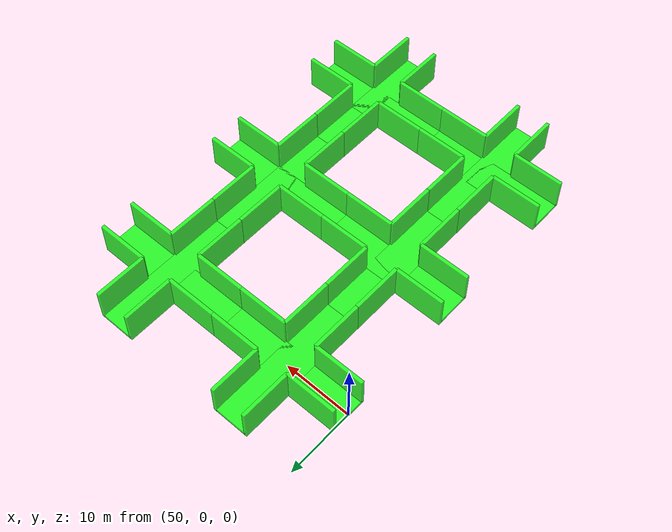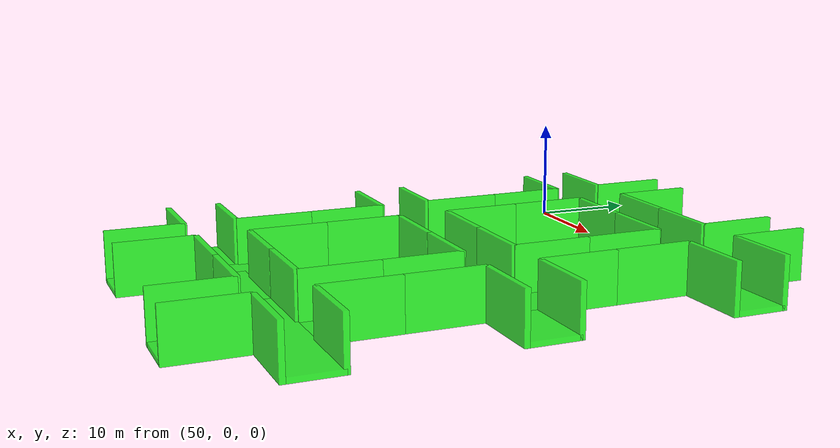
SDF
<sdf version="1.6">
 <world name="levels">
  <model name="tile_11">
   <pose>60 -40 0 0 0 -1.5707963267948966</pose>
   <static>true</static>
   <link name="link">
    <collision name="collision_0">
     <pose>0 0 -0.25 0 0 0</pose>
     <geometry><box><size>5 20 0.5</size></box></geometry>
    </collision>
    <visual name="visual_0">
     <pose>0 0 -0.25 0 0 0</pose>
     <geometry><box><size>5 20 0.5</size></box></geometry>
     <material><ambient>0 1 0 0.8</ambient><diffuse>0 1 0 0.8</diffuse><specular>1 1 1 0.8</specular></material>
    </visual>
    <collision name="collision_1">
     <pose>0 0 -0.25 0 0 1.57</pose>
     <geometry><box><size>5 20 0.5</size></box></geometry>
    </collision>
    <visual name="visual_1">
     <pose>0 0 -0.25 0 0 1.57</pose>
     <geometry><box><size>5 20 0.5</size></box></geometry>
     <material><ambient>0 1 0 0.8</ambient><diffuse>0 1 0 0.8</diffuse><specular>1 1 1 0.8</specular></material>
    </visual>
    <collision name="collision_2">
     <pose>-2.5 6.25 2 3.14 -1.57 0</pose>
     <geometry><box><size>5 7.5 0.5</size></box></geometry>
    </collision>
    <visual name="visual_2">
     <pose>-2.5 6.25 2 3.14 -1.57 0</pose>
     <geometry><box><size>5 7.5 0.5</size></box></geometry>
     <material><ambient>0 1 0 0.8</ambient><diffuse>0 1 0 0.8</diffuse><specular>1 1 1 0.8</specular></material>
    </visual>
    <collision name="collision_3">
     <pose>2.5 6.25 2 3.14 -1.57 0</pose>
     <geometry><box><size>5 7.5 0.5</size></box></geometry>
    </collision>
    <visual name="visual_3">
     <pose>2.5 6.25 2 3.14 -1.57 0</pose>
     <geometry><box><size>5 7.5 0.5</size></box></geometry>
     <material><ambient>0 1 0 0.8</ambient><diffuse>0 1 0 0.8</diffuse><specular>1 1 1 0.8</specular></material>
    </visual>
    <collision name="collision_4">
     <pose>-2.5 -6.25 2 3.14 -1.57 0</pose>
     <geometry><box><size>5 7.5 0.5</size></box></geometry>
    </collision>
    <visual name="visual_4">
     <pose>-2.5 -6.25 2 3.14 -1.57 0</pose>
     <geometry><box><size>5 7.5 0.5</size></box></geometry>
     <material><ambient>0 1 0 0.8</ambient><diffuse>0 1 0 0.8</diffuse><specular>1 1 1 0.8</specular></material>
    </visual>
    <collision name="collision_5">
     <pose>2.5 -6.25 2 3.14 -1.57 0</pose>
     <geometry><box><size>5 7.5 0.5</size></box></geometry>
    </collision>
    <visual name="visual_5">
     <pose>2.5 -6.25 2 3.14 -1.57 0</pose>
     <geometry><box><size>5 7.5 0.5</size></box></geometry>
     <material><ambient>0 1 0 0.8</ambient><diffuse>0 1 0 0.8</diffuse><specular>1 1 1 0.8</specular></material>
    </visual>
    <collision name="collision_6">
     <pose>6.25 2.5 2 1.57 1.57 0</pose>
     <geometry><box><size>5 7.5 0.5</size></box></geometry>
    </collision>
    <visual name="visual_6">
     <pose>6.25 2.5 2 1.57 1.57 0</pose>
     <geometry><box><size>5 7.5 0.5</size></box></geometry>
     <material><ambient>0 1 0 0.8</ambient><diffuse>0 1 0 0.8</diffuse><specular>1 1 1 0.8</specular></material>
    </visual>
    <collision name="collision_7">
     <pose>-6.25 2.5 2 1.57 1.57 0</pose>
     <geometry><box><size>5 7.5 0.5</size></box></geometry>
    </collision>
    <visual name="visual_7">
     <pose>-6.25 2.5 2 1.57 1.57 0</pose>
     <geometry><box><size>5 7.5 0.5</size></box></geometry>
     <material><ambient>0 1 0 0.8</ambient><diffuse>0 1 0 0.8</diffuse><specular>1 1 1 0.8</specular></material>
    </visual>
    <collision name="collision_8">
     <pose>6.25 -2.5 2 1.57 1.57 0</pose>
     <geometry><box><size>5 7.5 0.5</size></box></geometry>
    </collision>
    <visual name="visual_8">
     <pose>6.25 -2.5 2 1.57 1.57 0</pose>
     <geometry><box><size>5 7.5 0.5</size></box></geometry>
     <material><ambient>0 1 0 0.8</ambient><diffuse>0 1 0 0.8</diffuse><specular>1 1 1 0.8</specular></material>
    </visual>
    <collision name="collision_9">
     <pose>-6.25 -2.5 2 1.57 1.57 0</pose>
     <geometry><box><size>5 7.5 0.5</size></box></geometry>
    </collision>
    <visual name="visual_9">
     <pose>-6.25 -2.5 2 1.57 1.57 0</pose>
     <geometry><box><size>5 7.5 0.5</size></box></geometry>
     <material><ambient>0 1 0 0.8</ambient><diffuse>0 1 0 0.8</diffuse><specular>1 1 1 0.8</specular></material>
    </visual>
   </link>
  </model>
  <model name="tile_12">
   <pose>60 -20 0 0 0 -1.5707963267948966</pose>
   <static>true</static>
   <link name="link">
    <collision name="collision_0">
     <pose>0 0 -0.25 0 0 0</pose>
     <geometry><box><size>5 20 0.5</size></box></geometry>
    </collision>
    <visual name="visual_0">
     <pose>0 0 -0.25 0 0 0</pose>
     <geometry><box><size>5 20 0.5</size></box></geometry>
     <material><ambient>0 1 0 0.8</ambient><diffuse>0 1 0 0.8</diffuse><specular>1 1 1 0.8</specular></material>
    </visual>
    <collision name="collision_1">
     <pose>0 0 -0.25 0 0 1.57</pose>
     <geometry><box><size>5 20 0.5</size></box></geometry>
    </collision>
    <visual name="visual_1">
     <pose>0 0 -0.25 0 0 1.57</pose>
     <geometry><box><size>5 20 0.5</size></box></geometry>
     <material><ambient>0 1 0 0.8</ambient><diffuse>0 1 0 0.8</diffuse><specular>1 1 1 0.8</specular></material>
    </visual>
    <collision name="collision_2">
     <pose>-2.5 6.25 2 3.14 -1.57 0</pose>
     <geometry><box><size>5 7.5 0.5</size></box></geometry>
    </collision>
    <visual name="visual_2">
     <pose>-2.5 6.25 2 3.14 -1.57 0</pose>
     <geometry><box><size>5 7.5 0.5</size></box></geometry>
     <material><ambient>0 1 0 0.8</ambient><diffuse>0 1 0 0.8</diffuse><specular>1 1 1 0.8</specular></material>
    </visual>
    <collision name="collision_3">
     <pose>2.5 6.25 2 3.14 -1.57 0</pose>
     <geometry><box><size>5 7.5 0.5</size></box></geometry>
    </collision>
    <visual name="visual_3">
     <pose>2.5 6.25 2 3.14 -1.57 0</pose>
     <geometry><box><size>5 7.5 0.5</size></box></geometry>
     <material><ambient>0 1 0 0.8</ambient><diffuse>0 1 0 0.8</diffuse><specular>1 1 1 0.8</specular></material>
    </visual>
    <collision name="collision_4">
     <pose>-2.5 -6.25 2 3.14 -1.57 0</pose>
     <geometry><box><size>5 7.5 0.5</size></box></geometry>
    </collision>
    <visual name="visual_4">
     <pose>-2.5 -6.25 2 3.14 -1.57 0</pose>
     <geometry><box><size>5 7.5 0.5</size></box></geometry>
     <material><ambient>0 1 0 0.8</ambient><diffuse>0 1 0 0.8</diffuse><specular>1 1 1 0.8</specular></material>
    </visual>
    <collision name="collision_5">
     <pose>2.5 -6.25 2 3.14 -1.57 0</pose>
     <geometry><box><size>5 7.5 0.5</size></box></geometry>
    </collision>
    <visual name="visual_5">
     <pose>2.5 -6.25 2 3.14 -1.57 0</pose>
     <geometry><box><size>5 7.5 0.5</size></box></geometry>
     <material><ambient>0 1 0 0.8</ambient><diffuse>0 1 0 0.8</diffuse><specular>1 1 1 0.8</specular></material>
    </visual>
    <collision name="collision_6">
     <pose>6.25 2.5 2 1.57 1.57 0</pose>
     <geometry><box><size>5 7.5 0.5</size></box></geometry>
    </collision>
    <visual name="visual_6">
     <pose>6.25 2.5 2 1.57 1.57 0</pose>
     <geometry><box><size>5 7.5 0.5</size></box></geometry>
     <material><ambient>0 1 0 0.8</ambient><diffuse>0 1 0 0.8</diffuse><specular>1 1 1 0.8</specular></material>
    </visual>
    <collision name="collision_7">
     <pose>-6.25 2.5 2 1.57 1.57 0</pose>
     <geometry><box><size>5 7.5 0.5</size></box></geometry>
    </collision>
    <visual name="visual_7">
     <pose>-6.25 2.5 2 1.57 1.57 0</pose>
     <geometry><box><size>5 7.5 0.5</size></box></geometry>
     <material><ambient>0 1 0 0.8</ambient><diffuse>0 1 0 0.8</diffuse><specular>1 1 1 0.8</specular></material>
    </visual>
    <collision name="collision_8">
     <pose>6.25 -2.5 2 1.57 1.57 0</pose>
     <geometry><box><size>5 7.5 0.5</size></box></geometry>
    </collision>
    <visual name="visual_8">
     <pose>6.25 -2.5 2 1.57 1.57 0</pose>
     <geometry><box><size>5 7.5 0.5</size></box></geometry>
     <material><ambient>0 1 0 0.8</ambient><diffuse>0 1 0 0.8</diffuse><specular>1 1 1 0.8</specular></material>
    </visual>
    <collision name="collision_9">
     <pose>-6.25 -2.5 2 1.57 1.57 0</pose>
     <geometry><box><size>5 7.5 0.5</size></box></geometry>
    </collision>
    <visual name="visual_9">
     <pose>-6.25 -2.5 2 1.57 1.57 0</pose>
     <geometry><box><size>5 7.5 0.5</size></box></geometry>
     <material><ambient>0 1 0 0.8</ambient><diffuse>0 1 0 0.8</diffuse><specular>1 1 1 0.8</specular></material>
    </visual>
   </link>
  </model>
  <model name="tile_13">
   <pose>60 0 0 0 0 1.5707963267948966</pose>
   <static>true</static>
   <link name="link">
    <collision name="collision_0">
     <pose>0 0 -0.25 0 0 0</pose>
     <geometry><box><size>5 20 0.5</size></box></geometry>
    </collision>
    <visual name="visual_0">
     <pose>0 0 -0.25 0 0 0</pose>
     <geometry><box><size>5 20 0.5</size></box></geometry>
     <material><ambient>0 1 0 0.8</ambient><diffuse>0 1 0 0.8</diffuse><specular>1 1 1 0.8</specular></material>
    </visual>
    <collision name="collision_1">
     <pose>0 0 -0.25 0 0 1.57</pose>
     <geometry><box><size>5 20 0.5</size></box></geometry>
    </collision>
    <visual name="visual_1">
     <pose>0 0 -0.25 0 0 1.57</pose>
     <geometry><box><size>5 20 0.5</size></box></geometry>
     <material><ambient>0 1 0 0.8</ambient><diffuse>0 1 0 0.8</diffuse><specular>1 1 1 0.8</specular></material>
    </visual>
    <collision name="collision_2">
     <pose>-2.5 6.25 2 3.14 -1.57 0</pose>
     <geometry><box><size>5 7.5 0.5</size></box></geometry>
    </collision>
    <visual name="visual_2">
     <pose>-2.5 6.25 2 3.14 -1.57 0</pose>
     <geometry><box><size>5 7.5 0.5</size></box></geometry>
     <material><ambient>0 1 0 0.8</ambient><diffuse>0 1 0 0.8</diffuse><specular>1 1 1 0.8</specular></material>
    </visual>
    <collision name="collision_3">
     <pose>2.5 6.25 2 3.14 -1.57 0</pose>
     <geometry><box><size>5 7.5 0.5</size></box></geometry>
    </collision>
    <visual name="visual_3">
     <pose>2.5 6.25 2 3.14 -1.57 0</pose>
     <geometry><box><size>5 7.5 0.5</size></box></geometry>
     <material><ambient>0 1 0 0.8</ambient><diffuse>0 1 0 0.8</diffuse><specular>1 1 1 0.8</specular></material>
    </visual>
    <collision name="collision_4">
     <pose>-2.5 -6.25 2 3.14 -1.57 0</pose>
     <geometry><box><size>5 7.5 0.5</size></box></geometry>
    </collision>
    <visual name="visual_4">
     <pose>-2.5 -6.25 2 3.14 -1.57 0</pose>
     <geometry><box><size>5 7.5 0.5</size></box></geometry>
     <material><ambient>0 1 0 0.8</ambient><diffuse>0 1 0 0.8</diffuse><specular>1 1 1 0.8</specular></material>
    </visual>
    <collision name="collision_5">
     <pose>2.5 -6.25 2 3.14 -1.57 0</pose>
     <geometry><box><size>5 7.5 0.5</size></box></geometry>
    </collision>
    <visual name="visual_5">
     <pose>2.5 -6.25 2 3.14 -1.57 0</pose>
     <geometry><box><size>5 7.5 0.5</size></box></geometry>
     <material><ambient>0 1 0 0.8</ambient><diffuse>0 1 0 0.8</diffuse><specular>1 1 1 0.8</specular></material>
    </visual>
    <collision name="collision_6">
     <pose>6.25 2.5 2 1.57 1.57 0</pose>
     <geometry><box><size>5 7.5 0.5</size></box></geometry>
    </collision>
    <visual name="visual_6">
     <pose>6.25 2.5 2 1.57 1.57 0</pose>
     <geometry><box><size>5 7.5 0.5</size></box></geometry>
     <material><ambient>0 1 0 0.8</ambient><diffuse>0 1 0 0.8</diffuse><specular>1 1 1 0.8</specular></material>
    </visual>
    <collision name="collision_7">
     <pose>-6.25 2.5 2 1.57 1.57 0</pose>
     <geometry><box><size>5 7.5 0.5</size></box></geometry>
    </collision>
    <visual name="visual_7">
     <pose>-6.25 2.5 2 1.57 1.57 0</pose>
     <geometry><box><size>5 7.5 0.5</size></box></geometry>
     <material><ambient>0 1 0 0.8</ambient><diffuse>0 1 0 0.8</diffuse><specular>1 1 1 0.8</specular></material>
    </visual>
    <collision name="collision_8">
     <pose>6.25 -2.5 2 1.57 1.57 0</pose>
     <geometry><box><size>5 7.5 0.5</size></box></geometry>
    </collision>
    <visual name="visual_8">
     <pose>6.25 -2.5 2 1.57 1.57 0</pose>
     <geometry><box><size>5 7.5 0.5</size></box></geometry>
     <material><ambient>0 1 0 0.8</ambient><diffuse>0 1 0 0.8</diffuse><specular>1 1 1 0.8</specular></material>
    </visual>
    <collision name="collision_9">
     <pose>-6.25 -2.5 2 1.57 1.57 0</pose>
     <geometry><box><size>5 7.5 0.5</size></box></geometry>
    </collision>
    <visual name="visual_9">
     <pose>-6.25 -2.5 2 1.57 1.57 0</pose>
     <geometry><box><size>5 7.5 0.5</size></box></geometry>
     <material><ambient>0 1 0 0.8</ambient><diffuse>0 1 0 0.8</diffuse><specular>1 1 1 0.8</specular></material>
    </visual>
   </link>
  </model>
  <model name="tile_16">
   <pose>80 -40 0 0 0 -1.5707963267948966</pose>
   <static>true</static>
   <link name="link">
    <collision name="collision_0">
     <pose>0 0 -0.25 0 0 0</pose>
     <geometry><box><size>5 20 0.5</size></box></geometry>
    </collision>
    <visual name="visual_0">
     <pose>0 0 -0.25 0 0 0</pose>
     <geometry><box><size>5 20 0.5</size></box></geometry>
     <material><ambient>0 1 0 0.8</ambient><diffuse>0 1 0 0.8</diffuse><specular>1 1 1 0.8</specular></material>
    </visual>
    <collision name="collision_1">
     <pose>0 0 -0.25 0 0 1.57</pose>
     <geometry><box><size>5 20 0.5</size></box></geometry>
    </collision>
    <visual name="visual_1">
     <pose>0 0 -0.25 0 0 1.57</pose>
     <geometry><box><size>5 20 0.5</size></box></geometry>
     <material><ambient>0 1 0 0.8</ambient><diffuse>0 1 0 0.8</diffuse><specular>1 1 1 0.8</specular></material>
    </visual>
    <collision name="collision_2">
     <pose>-2.5 6.25 2 3.14 -1.57 0</pose>
     <geometry><box><size>5 7.5 0.5</size></box></geometry>
    </collision>
    <visual name="visual_2">
     <pose>-2.5 6.25 2 3.14 -1.57 0</pose>
     <geometry><box><size>5 7.5 0.5</size></box></geometry>
     <material><ambient>0 1 0 0.8</ambient><diffuse>0 1 0 0.8</diffuse><specular>1 1 1 0.8</specular></material>
    </visual>
    <collision name="collision_3">
     <pose>2.5 6.25 2 3.14 -1.57 0</pose>
     <geometry><box><size>5 7.5 0.5</size></box></geometry>
    </collision>
    <visual name="visual_3">
     <pose>2.5 6.25 2 3.14 -1.57 0</pose>
     <geometry><box><size>5 7.5 0.5</size></box></geometry>
     <material><ambient>0 1 0 0.8</ambient><diffuse>0 1 0 0.8</diffuse><specular>1 1 1 0.8</specular></material>
    </visual>
    <collision name="collision_4">
     <pose>-2.5 -6.25 2 3.14 -1.57 0</pose>
     <geometry><box><size>5 7.5 0.5</size></box></geometry>
    </collision>
    <visual name="visual_4">
     <pose>-2.5 -6.25 2 3.14 -1.57 0</pose>
     <geometry><box><size>5 7.5 0.5</size></box></geometry>
     <material><ambient>0 1 0 0.8</ambient><diffuse>0 1 0 0.8</diffuse><specular>1 1 1 0.8</specular></material>
    </visual>
    <collision name="collision_5">
     <pose>2.5 -6.25 2 3.14 -1.57 0</pose>
     <geometry><box><size>5 7.5 0.5</size></box></geometry>
    </collision>
    <visual name="visual_5">
     <pose>2.5 -6.25 2 3.14 -1.57 0</pose>
     <geometry><box><size>5 7.5 0.5</size></box></geometry>
     <material><ambient>0 1 0 0.8</ambient><diffuse>0 1 0 0.8</diffuse><specular>1 1 1 0.8</specular></material>
    </visual>
    <collision name="collision_6">
     <pose>6.25 2.5 2 1.57 1.57 0</pose>
     <geometry><box><size>5 7.5 0.5</size></box></geometry>
    </collision>
    <visual name="visual_6">
     <pose>6.25 2.5 2 1.57 1.57 0</pose>
     <geometry><box><size>5 7.5 0.5</size></box></geometry>
     <material><ambient>0 1 0 0.8</ambient><diffuse>0 1 0 0.8</diffuse><specular>1 1 1 0.8</specular></material>
    </visual>
    <collision name="collision_7">
     <pose>-6.25 2.5 2 1.57 1.57 0</pose>
     <geometry><box><size>5 7.5 0.5</size></box></geometry>
    </collision>
    <visual name="visual_7">
     <pose>-6.25 2.5 2 1.57 1.57 0</pose>
     <geometry><box><size>5 7.5 0.5</size></box></geometry>
     <material><ambient>0 1 0 0.8</ambient><diffuse>0 1 0 0.8</diffuse><specular>1 1 1 0.8</specular></material>
    </visual>
    <collision name="collision_8">
     <pose>6.25 -2.5 2 1.57 1.57 0</pose>
     <geometry><box><size>5 7.5 0.5</size></box></geometry>
    </collision>
    <visual name="visual_8">
     <pose>6.25 -2.5 2 1.57 1.57 0</pose>
     <geometry><box><size>5 7.5 0.5</size></box></geometry>
     <material><ambient>0 1 0 0.8</ambient><diffuse>0 1 0 0.8</diffuse><specular>1 1 1 0.8</specular></material>
    </visual>
    <collision name="collision_9">
     <pose>-6.25 -2.5 2 1.57 1.57 0</pose>
     <geometry><box><size>5 7.5 0.5</size></box></geometry>
    </collision>
    <visual name="visual_9">
     <pose>-6.25 -2.5 2 1.57 1.57 0</pose>
     <geometry><box><size>5 7.5 0.5</size></box></geometry>
     <material><ambient>0 1 0 0.8</ambient><diffuse>0 1 0 0.8</diffuse><specular>1 1 1 0.8</specular></material>
    </visual>
   </link>
  </model>
  <model name="tile_17">
   <pose>80 -20 0 0 0 0</pose>
   <static>true</static>
   <link name="link">
    <collision name="collision_0">
     <pose>0 0 -0.25 0 0 0</pose>
     <geometry><box><size>5 20 0.5</size></box></geometry>
    </collision>
    <visual name="visual_0">
     <pose>0 0 -0.25 0 0 0</pose>
     <geometry><box><size>5 20 0.5</size></box></geometry>
     <material><ambient>0 1 0 0.8</ambient><diffuse>0 1 0 0.8</diffuse><specular>1 1 1 0.8</specular></material>
    </visual>
    <collision name="collision_1">
     <pose>0 0 -0.25 0 0 1.57</pose>
     <geometry><box><size>5 20 0.5</size></box></geometry>
    </collision>
    <visual name="visual_1">
     <pose>0 0 -0.25 0 0 1.57</pose>
     <geometry><box><size>5 20 0.5</size></box></geometry>
     <material><ambient>0 1 0 0.8</ambient><diffuse>0 1 0 0.8</diffuse><specular>1 1 1 0.8</specular></material>
    </visual>
    <collision name="collision_2">
     <pose>-2.5 6.25 2 3.14 -1.57 0</pose>
     <geometry><box><size>5 7.5 0.5</size></box></geometry>
    </collision>
    <visual name="visual_2">
     <pose>-2.5 6.25 2 3.14 -1.57 0</pose>
     <geometry><box><size>5 7.5 0.5</size></box></geometry>
     <material><ambient>0 1 0 0.8</ambient><diffuse>0 1 0 0.8</diffuse><specular>1 1 1 0.8</specular></material>
    </visual>
    <collision name="collision_3">
     <pose>2.5 6.25 2 3.14 -1.57 0</pose>
     <geometry><box><size>5 7.5 0.5</size></box></geometry>
    </collision>
    <visual name="visual_3">
     <pose>2.5 6.25 2 3.14 -1.57 0</pose>
     <geometry><box><size>5 7.5 0.5</size></box></geometry>
     <material><ambient>0 1 0 0.8</ambient><diffuse>0 1 0 0.8</diffuse><specular>1 1 1 0.8</specular></material>
    </visual>
    <collision name="collision_4">
     <pose>-2.5 -6.25 2 3.14 -1.57 0</pose>
     <geometry><box><size>5 7.5 0.5</size></box></geometry>
    </collision>
    <visual name="visual_4">
     <pose>-2.5 -6.25 2 3.14 -1.57 0</pose>
     <geometry><box><size>5 7.5 0.5</size></box></geometry>
     <material><ambient>0 1 0 0.8</ambient><diffuse>0 1 0 0.8</diffuse><specular>1 1 1 0.8</specular></material>
    </visual>
    <collision name="collision_5">
     <pose>2.5 -6.25 2 3.14 -1.57 0</pose>
     <geometry><box><size>5 7.5 0.5</size></box></geometry>
    </collision>
    <visual name="visual_5">
     <pose>2.5 -6.25 2 3.14 -1.57 0</pose>
     <geometry><box><size>5 7.5 0.5</size></box></geometry>
     <material><ambient>0 1 0 0.8</ambient><diffuse>0 1 0 0.8</diffuse><specular>1 1 1 0.8</specular></material>
    </visual>
    <collision name="collision_6">
     <pose>6.25 2.5 2 1.57 1.57 0</pose>
     <geometry><box><size>5 7.5 0.5</size></box></geometry>
    </collision>
    <visual name="visual_6">
     <pose>6.25 2.5 2 1.57 1.57 0</pose>
     <geometry><box><size>5 7.5 0.5</size></box></geometry>
     <material><ambient>0 1 0 0.8</ambient><diffuse>0 1 0 0.8</diffuse><specular>1 1 1 0.8</specular></material>
    </visual>
    <collision name="collision_7">
     <pose>-6.25 2.5 2 1.57 1.57 0</pose>
     <geometry><box><size>5 7.5 0.5</size></box></geometry>
    </collision>
    <visual name="visual_7">
     <pose>-6.25 2.5 2 1.57 1.57 0</pose>
     <geometry><box><size>5 7.5 0.5</size></box></geometry>
     <material><ambient>0 1 0 0.8</ambient><diffuse>0 1 0 0.8</diffuse><specular>1 1 1 0.8</specular></material>
    </visual>
    <collision name="collision_8">
     <pose>6.25 -2.5 2 1.57 1.57 0</pose>
     <geometry><box><size>5 7.5 0.5</size></box></geometry>
    </collision>
    <visual name="visual_8">
     <pose>6.25 -2.5 2 1.57 1.57 0</pose>
     <geometry><box><size>5 7.5 0.5</size></box></geometry>
     <material><ambient>0 1 0 0.8</ambient><diffuse>0 1 0 0.8</diffuse><specular>1 1 1 0.8</specular></material>
    </visual>
    <collision name="collision_9">
     <pose>-6.25 -2.5 2 1.57 1.57 0</pose>
     <geometry><box><size>5 7.5 0.5</size></box></geometry>
    </collision>
    <visual name="visual_9">
     <pose>-6.25 -2.5 2 1.57 1.57 0</pose>
     <geometry><box><size>5 7.5 0.5</size></box></geometry>
     <material><ambient>0 1 0 0.8</ambient><diffuse>0 1 0 0.8</diffuse><specular>1 1 1 0.8</specular></material>
    </visual>
   </link>
  </model>
  <model name="tile_18">
   <pose>80 0 0 0 0 0</pose>
   <static>true</static>
   <link name="link">
    <collision name="collision_0">
     <pose>0 0 -0.25 0 0 0</pose>
     <geometry><box><size>5 20 0.5</size></box></geometry>
    </collision>
    <visual name="visual_0">
     <pose>0 0 -0.25 0 0 0</pose>
     <geometry><box><size>5 20 0.5</size></box></geometry>
     <material><ambient>0 1 0 0.8</ambient><diffuse>0 1 0 0.8</diffuse><specular>1 1 1 0.8</specular></material>
    </visual>
    <collision name="collision_1">
     <pose>0 0 -0.25 0 0 1.57</pose>
     <geometry><box><size>5 20 0.5</size></box></geometry>
    </collision>
    <visual name="visual_1">
     <pose>0 0 -0.25 0 0 1.57</pose>
     <geometry><box><size>5 20 0.5</size></box></geometry>
     <material><ambient>0 1 0 0.8</ambient><diffuse>0 1 0 0.8</diffuse><specular>1 1 1 0.8</specular></material>
    </visual>
    <collision name="collision_2">
     <pose>-2.5 6.25 2 3.14 -1.57 0</pose>
     <geometry><box><size>5 7.5 0.5</size></box></geometry>
    </collision>
    <visual name="visual_2">
     <pose>-2.5 6.25 2 3.14 -1.57 0</pose>
     <geometry><box><size>5 7.5 0.5</size></box></geometry>
     <material><ambient>0 1 0 0.8</ambient><diffuse>0 1 0 0.8</diffuse><specular>1 1 1 0.8</specular></material>
    </visual>
    <collision name="collision_3">
     <pose>2.5 6.25 2 3.14 -1.57 0</pose>
     <geometry><box><size>5 7.5 0.5</size></box></geometry>
    </collision>
    <visual name="visual_3">
     <pose>2.5 6.25 2 3.14 -1.57 0</pose>
     <geometry><box><size>5 7.5 0.5</size></box></geometry>
     <material><ambient>0 1 0 0.8</ambient><diffuse>0 1 0 0.8</diffuse><specular>1 1 1 0.8</specular></material>
    </visual>
    <collision name="collision_4">
     <pose>-2.5 -6.25 2 3.14 -1.57 0</pose>
     <geometry><box><size>5 7.5 0.5</size></box></geometry>
    </collision>
    <visual name="visual_4">
     <pose>-2.5 -6.25 2 3.14 -1.57 0</pose>
     <geometry><box><size>5 7.5 0.5</size></box></geometry>
     <material><ambient>0 1 0 0.8</ambient><diffuse>0 1 0 0.8</diffuse><specular>1 1 1 0.8</specular></material>
    </visual>
    <collision name="collision_5">
     <pose>2.5 -6.25 2 3.14 -1.57 0</pose>
     <geometry><box><size>5 7.5 0.5</size></box></geometry>
    </collision>
    <visual name="visual_5">
     <pose>2.5 -6.25 2 3.14 -1.57 0</pose>
     <geometry><box><size>5 7.5 0.5</size></box></geometry>
     <material><ambient>0 1 0 0.8</ambient><diffuse>0 1 0 0.8</diffuse><specular>1 1 1 0.8</specular></material>
    </visual>
    <collision name="collision_6">
     <pose>6.25 2.5 2 1.57 1.57 0</pose>
     <geometry><box><size>5 7.5 0.5</size></box></geometry>
    </collision>
    <visual name="visual_6">
     <pose>6.25 2.5 2 1.57 1.57 0</pose>
     <geometry><box><size>5 7.5 0.5</size></box></geometry>
     <material><ambient>0 1 0 0.8</ambient><diffuse>0 1 0 0.8</diffuse><specular>1 1 1 0.8</specular></material>
    </visual>
    <collision name="collision_7">
     <pose>-6.25 2.5 2 1.57 1.57 0</pose>
     <geometry><box><size>5 7.5 0.5</size></box></geometry>
    </collision>
    <visual name="visual_7">
     <pose>-6.25 2.5 2 1.57 1.57 0</pose>
     <geometry><box><size>5 7.5 0.5</size></box></geometry>
     <material><ambient>0 1 0 0.8</ambient><diffuse>0 1 0 0.8</diffuse><specular>1 1 1 0.8</specular></material>
    </visual>
    <collision name="collision_8">
     <pose>6.25 -2.5 2 1.57 1.57 0</pose>
     <geometry><box><size>5 7.5 0.5</size></box></geometry>
    </collision>
    <visual name="visual_8">
     <pose>6.25 -2.5 2 1.57 1.57 0</pose>
     <geometry><box><size>5 7.5 0.5</size></box></geometry>
     <material><ambient>0 1 0 0.8</ambient><diffuse>0 1 0 0.8</diffuse><specular>1 1 1 0.8</specular></material>
    </visual>
    <collision name="collision_9">
     <pose>-6.25 -2.5 2 1.57 1.57 0</pose>
     <geometry><box><size>5 7.5 0.5</size></box></geometry>
    </collision>
    <visual name="visual_9">
     <pose>-6.25 -2.5 2 1.57 1.57 0</pose>
     <geometry><box><size>5 7.5 0.5</size></box></geometry>
     <material><ambient>0 1 0 0.8</ambient><diffuse>0 1 0 0.8</diffuse><specular>1 1 1 0.8</specular></material>
    </visual>
   </link>
  </model>
 </world>
</sdf>
